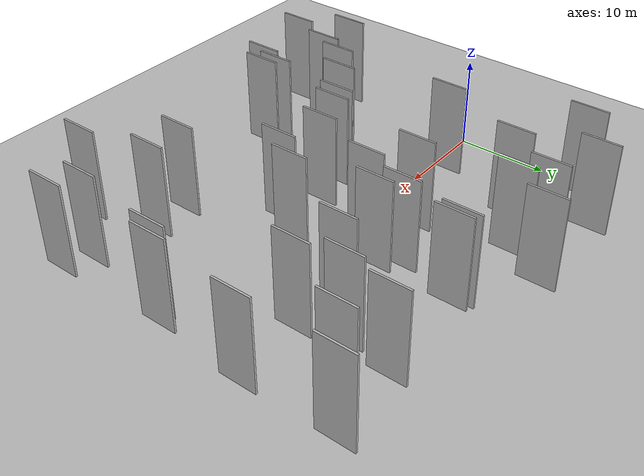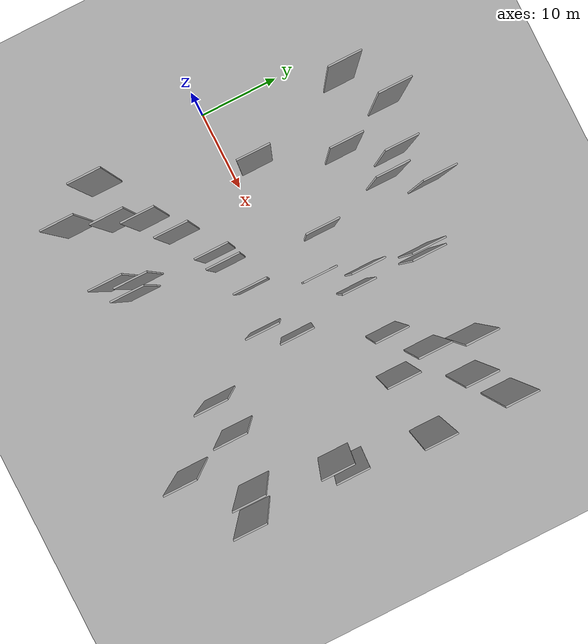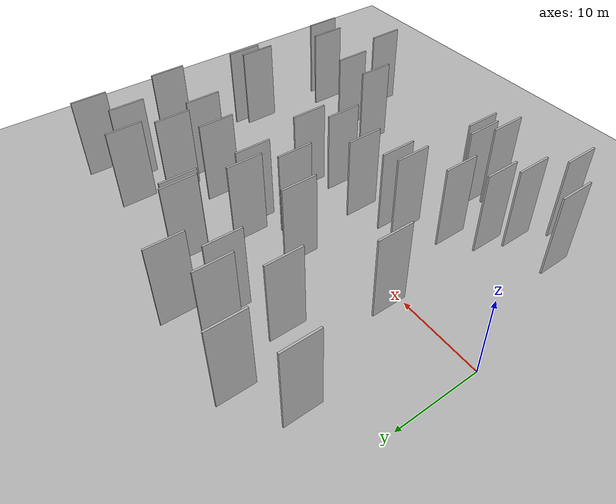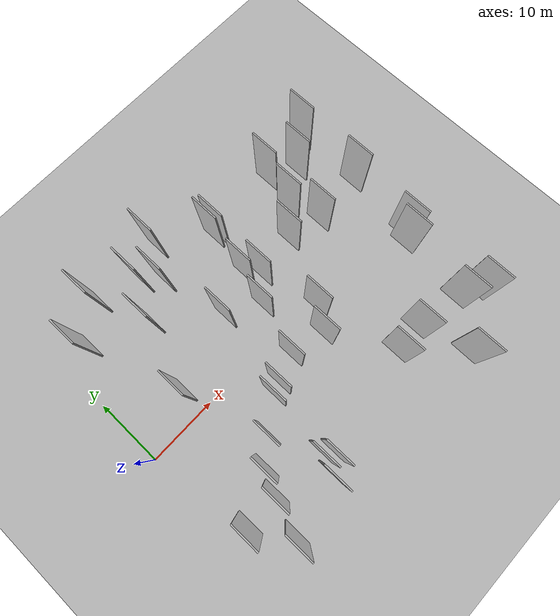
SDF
<?xml version="1.0" encoding="utf-8"?>

<sdf version="1.6">

   <world name="default">

      <gui fullscreen="0">

         <camera name="user_camera">

            <pose>-15 0 4.57585 0 0 0</pose>

            <view_controller>orbit</view_controller>

         </camera>

      </gui>

      <scene>

         <sky>

           <clouds>

             <speed>12</speed>

           </clouds>

         </sky>

         <ambient>0.4 0.4 0.4 1</ambient>

         <background>0.7 0.7 0.7 1</background>

         <shadows>1</shadows>

      </scene>

      <gravity>0 0 -9.8066</gravity>

      <magnetic_field>6e-06 2.3e-05 -4.2e-05</magnetic_field>

      <physics default="0" name="default_physics" type="ode">

         <ode>

            <solver>

               <type>quick</type>

               <iters>10</iters>

               <sor>1.0</sor>

               <use_dynamic_moi_rescaling>0</use_dynamic_moi_rescaling>

            </solver>

            <constraints>

               <cfm>0</cfm>

               <erp>0.2</erp>

               <contact_max_correcting_vel>100</contact_max_correcting_vel>

               <contact_surface_layer>0.001</contact_surface_layer>

            </constraints>

         </ode>

         <max_step_size>0.004</max_step_size>

         <real_time_factor>1</real_time_factor>

         <real_time_update_rate>250</real_time_update_rate>

      </physics>

      <light name="sun" type="directional">

         <cast_shadows>1</cast_shadows>

         <pose>0 0 10 0 0 0</pose>

         <diffuse>0.8 0.8 0.8 1</diffuse>

         <specular>0.2 0.2 0.2 1</specular>

         <attenuation>

            <range>1000</range>

            <constant>0.9</constant>

            <linear>0.01</linear>

            <quadratic>0.001</quadratic>

         </attenuation>

         <direction>-0.5 0.1 -0.9</direction>

      </light>

      <include>

         <name>ground_plane_1</name>

         <uri>model://HANNAS_ground_plane</uri>

         <pose>0 0 0  0 0 0</pose>

      </include>

      <include>

         <name>ground_plane_2</name>

         <uri>model://HANNAS_ground_plane</uri>

         <pose>100 0 0  0 0 0</pose>

      </include>

      <model name="HANNAS_wall_1">

         <static>1</static>

         <pose frame="">26.9041 6.5870 2.5 0.000000 0.000000 1.570796</pose>

         <link name="link">

            <pose frame="">0 0 5.00 0 0 0</pose>

            <collision name="collision">

               <geometry>

                  <box>

                     <size>4.00 0.2 10.00</size>

                  </box>

               </geometry>

               <max_contacts>10</max_contacts>

               <surface>

                  <contact>

                     <ode/>

                  </contact>

                  <bounce/>

                  <friction>

                     <torsional>

                        <ode/>

                     </torsional>

                     <ode/>

                  </friction>

               </surface>

            </collision>

            <visual name="visual">

               <cast_shadows>0</cast_shadows>

               <geometry>

                  <box>

                     <size>4.00 0.2 10.00</size>

                  </box>

               </geometry>

               <material>

                  <script>

                     <uri>model://HANNAS_wall/materials/scripts</uri>

                     <uri>model://HANNAS_wall/materials/textures</uri>

                     <name>vrc/HANNAS_wall</name>

                  </script>

               </material>

            </visual>

            <self_collide>0</self_collide>

            <enable_wind>0</enable_wind>

            <kinematic>0</kinematic>

         </link>

      </model>

      <model name="HANNAS_wall_2">

         <static>1</static>

         <pose frame="">26.3819 15.1215 2.5 0.000000 0.000000 1.570796</pose>

         <link name="link">

            <pose frame="">0 0 5.00 0 0 0</pose>

            <collision name="collision">

               <geometry>

                  <box>

                     <size>4.00 0.2 10.00</size>

                  </box>

               </geometry>

               <max_contacts>10</max_contacts>

               <surface>

                  <contact>

                     <ode/>

                  </contact>

                  <bounce/>

                  <friction>

                     <torsional>

                        <ode/>

                     </torsional>

                     <ode/>

                  </friction>

               </surface>

            </collision>

            <visual name="visual">

               <cast_shadows>0</cast_shadows>

               <geometry>

                  <box>

                     <size>4.00 0.2 10.00</size>

                  </box>

               </geometry>

               <material>

                  <script>

                     <uri>model://HANNAS_wall/materials/scripts</uri>

                     <uri>model://HANNAS_wall/materials/textures</uri>

                     <name>vrc/HANNAS_wall</name>

                  </script>

               </material>

            </visual>

            <self_collide>0</self_collide>

            <enable_wind>0</enable_wind>

            <kinematic>0</kinematic>

         </link>

      </model>

      <model name="HANNAS_wall_3">

         <static>1</static>

         <pose frame="">6.4852 -18.9125 2.5 0.000000 0.000000 1.570796</pose>

         <link name="link">

            <pose frame="">0 0 5.00 0 0 0</pose>

            <collision name="collision">

               <geometry>

                  <box>

                     <size>4.00 0.2 10.00</size>

                  </box>

               </geometry>

               <max_contacts>10</max_contacts>

               <surface>

                  <contact>

                     <ode/>

                  </contact>

                  <bounce/>

                  <friction>

                     <torsional>

                        <ode/>

                     </torsional>

                     <ode/>

                  </friction>

               </surface>

            </collision>

            <visual name="visual">

               <cast_shadows>0</cast_shadows>

               <geometry>

                  <box>

                     <size>4.00 0.2 10.00</size>

                  </box>

               </geometry>

               <material>

                  <script>

                     <uri>model://HANNAS_wall/materials/scripts</uri>

                     <uri>model://HANNAS_wall/materials/textures</uri>

                     <name>vrc/HANNAS_wall</name>

                  </script>

               </material>

            </visual>

            <self_collide>0</self_collide>

            <enable_wind>0</enable_wind>

            <kinematic>0</kinematic>

         </link>

      </model>

      <model name="HANNAS_wall_4">

         <static>1</static>

         <pose frame="">31.2590 -13.1753 2.5 0.000000 0.000000 1.570796</pose>

         <link name="link">

            <pose frame="">0 0 5.00 0 0 0</pose>

            <collision name="collision">

               <geometry>

                  <box>

                     <size>4.00 0.2 10.00</size>

                  </box>

               </geometry>

               <max_contacts>10</max_contacts>

               <surface>

                  <contact>

                     <ode/>

                  </contact>

                  <bounce/>

                  <friction>

                     <torsional>

                        <ode/>

                     </torsional>

                     <ode/>

                  </friction>

               </surface>

            </collision>

            <visual name="visual">

               <cast_shadows>0</cast_shadows>

               <geometry>

                  <box>

                     <size>4.00 0.2 10.00</size>

                  </box>

               </geometry>

               <material>

                  <script>

                     <uri>model://HANNAS_wall/materials/scripts</uri>

                     <uri>model://HANNAS_wall/materials/textures</uri>

                     <name>vrc/HANNAS_wall</name>

                  </script>

               </material>

            </visual>

            <self_collide>0</self_collide>

            <enable_wind>0</enable_wind>

            <kinematic>0</kinematic>

         </link>

      </model>

      <model name="HANNAS_wall_5">

         <static>1</static>

         <pose frame="">23.9160 3.4905 2.5 0.000000 0.000000 1.570796</pose>

         <link name="link">

            <pose frame="">0 0 5.00 0 0 0</pose>

            <collision name="collision">

               <geometry>

                  <box>

                     <size>4.00 0.2 10.00</size>

                  </box>

               </geometry>

               <max_contacts>10</max_contacts>

               <surface>

                  <contact>

                     <ode/>

                  </contact>

                  <bounce/>

                  <friction>

                     <torsional>

                        <ode/>

                     </torsional>

                     <ode/>

                  </friction>

               </surface>

            </collision>

            <visual name="visual">

               <cast_shadows>0</cast_shadows>

               <geometry>

                  <box>

                     <size>4.00 0.2 10.00</size>

                  </box>

               </geometry>

               <material>

                  <script>

                     <uri>model://HANNAS_wall/materials/scripts</uri>

                     <uri>model://HANNAS_wall/materials/textures</uri>

                     <name>vrc/HANNAS_wall</name>

                  </script>

               </material>

            </visual>

            <self_collide>0</self_collide>

            <enable_wind>0</enable_wind>

            <kinematic>0</kinematic>

         </link>

      </model>

      <model name="HANNAS_wall_6">

         <static>1</static>

         <pose frame="">16.5025 -5.6721 2.5 0.000000 0.000000 1.570796</pose>

         <link name="link">

            <pose frame="">0 0 5.00 0 0 0</pose>

            <collision name="collision">

               <geometry>

                  <box>

                     <size>4.00 0.2 10.00</size>

                  </box>

               </geometry>

               <max_contacts>10</max_contacts>

               <surface>

                  <contact>

                     <ode/>

                  </contact>

                  <bounce/>

                  <friction>

                     <torsional>

                        <ode/>

                     </torsional>

                     <ode/>

                  </friction>

               </surface>

            </collision>

            <visual name="visual">

               <cast_shadows>0</cast_shadows>

               <geometry>

                  <box>

                     <size>4.00 0.2 10.00</size>

                  </box>

               </geometry>

               <material>

                  <script>

                     <uri>model://HANNAS_wall/materials/scripts</uri>

                     <uri>model://HANNAS_wall/materials/textures</uri>

                     <name>vrc/HANNAS_wall</name>

                  </script>

               </material>

            </visual>

            <self_collide>0</self_collide>

            <enable_wind>0</enable_wind>

            <kinematic>0</kinematic>

         </link>

      </model>

      <model name="HANNAS_wall_7">

         <static>1</static>

         <pose frame="">44.8333 -15.3788 2.5 0.000000 0.000000 1.570796</pose>

         <link name="link">

            <pose frame="">0 0 5.00 0 0 0</pose>

            <collision name="collision">

               <geometry>

                  <box>

                     <size>4.00 0.2 10.00</size>

                  </box>

               </geometry>

               <max_contacts>10</max_contacts>

               <surface>

                  <contact>

                     <ode/>

                  </contact>

                  <bounce/>

                  <friction>

                     <torsional>

                        <ode/>

                     </torsional>

                     <ode/>

                  </friction>

               </surface>

            </collision>

            <visual name="visual">

               <cast_shadows>0</cast_shadows>

               <geometry>

                  <box>

                     <size>4.00 0.2 10.00</size>

                  </box>

               </geometry>

               <material>

                  <script>

                     <uri>model://HANNAS_wall/materials/scripts</uri>

                     <uri>model://HANNAS_wall/materials/textures</uri>

                     <name>vrc/HANNAS_wall</name>

                  </script>

               </material>

            </visual>

            <self_collide>0</self_collide>

            <enable_wind>0</enable_wind>

            <kinematic>0</kinematic>

         </link>

      </model>

      <model name="HANNAS_wall_8">

         <static>1</static>

         <pose frame="">41.5020 13.7802 2.5 0.000000 0.000000 1.570796</pose>

         <link name="link">

            <pose frame="">0 0 5.00 0 0 0</pose>

            <collision name="collision">

               <geometry>

                  <box>

                     <size>4.00 0.2 10.00</size>

                  </box>

               </geometry>

               <max_contacts>10</max_contacts>

               <surface>

                  <contact>

                     <ode/>

                  </contact>

                  <bounce/>

                  <friction>

                     <torsional>

                        <ode/>

                     </torsional>

                     <ode/>

                  </friction>

               </surface>

            </collision>

            <visual name="visual">

               <cast_shadows>0</cast_shadows>

               <geometry>

                  <box>

                     <size>4.00 0.2 10.00</size>

                  </box>

               </geometry>

               <material>

                  <script>

                     <uri>model://HANNAS_wall/materials/scripts</uri>

                     <uri>model://HANNAS_wall/materials/textures</uri>

                     <name>vrc/HANNAS_wall</name>

                  </script>

               </material>

            </visual>

            <self_collide>0</self_collide>

            <enable_wind>0</enable_wind>

            <kinematic>0</kinematic>

         </link>

      </model>

      <model name="HANNAS_wall_9">

         <static>1</static>

         <pose frame="">8.2278 -13.9145 2.5 0.000000 0.000000 1.570796</pose>

         <link name="link">

            <pose frame="">0 0 5.00 0 0 0</pose>

            <collision name="collision">

               <geometry>

                  <box>

                     <size>4.00 0.2 10.00</size>

                  </box>

               </geometry>

               <max_contacts>10</max_contacts>

               <surface>

                  <contact>

                     <ode/>

                  </contact>

                  <bounce/>

                  <friction>

                     <torsional>

                        <ode/>

                     </torsional>

                     <ode/>

                  </friction>

               </surface>

            </collision>

            <visual name="visual">

               <cast_shadows>0</cast_shadows>

               <geometry>

                  <box>

                     <size>4.00 0.2 10.00</size>

                  </box>

               </geometry>

               <material>

                  <script>

                     <uri>model://HANNAS_wall/materials/scripts</uri>

                     <uri>model://HANNAS_wall/materials/textures</uri>

                     <name>vrc/HANNAS_wall</name>

                  </script>

               </material>

            </visual>

            <self_collide>0</self_collide>

            <enable_wind>0</enable_wind>

            <kinematic>0</kinematic>

         </link>

      </model>

      <model name="HANNAS_wall_10">

         <static>1</static>

         <pose frame="">35.3496 -12.9307 2.5 0.000000 0.000000 1.570796</pose>

         <link name="link">

            <pose frame="">0 0 5.00 0 0 0</pose>

            <collision name="collision">

               <geometry>

                  <box>

                     <size>4.00 0.2 10.00</size>

                  </box>

               </geometry>

               <max_contacts>10</max_contacts>

               <surface>

                  <contact>

                     <ode/>

                  </contact>

                  <bounce/>

                  <friction>

                     <torsional>

                        <ode/>

                     </torsional>

                     <ode/>

                  </friction>

               </surface>

            </collision>

            <visual name="visual">

               <cast_shadows>0</cast_shadows>

               <geometry>

                  <box>

                     <size>4.00 0.2 10.00</size>

                  </box>

               </geometry>

               <material>

                  <script>

                     <uri>model://HANNAS_wall/materials/scripts</uri>

                     <uri>model://HANNAS_wall/materials/textures</uri>

                     <name>vrc/HANNAS_wall</name>

                  </script>

               </material>

            </visual>

            <self_collide>0</self_collide>

            <enable_wind>0</enable_wind>

            <kinematic>0</kinematic>

         </link>

      </model>

      <model name="HANNAS_wall_11">

         <static>1</static>

         <pose frame="">28.6428 -1.6257 2.5 0.000000 0.000000 1.570796</pose>

         <link name="link">

            <pose frame="">0 0 5.00 0 0 0</pose>

            <collision name="collision">

               <geometry>

                  <box>

                     <size>4.00 0.2 10.00</size>

                  </box>

               </geometry>

               <max_contacts>10</max_contacts>

               <surface>

                  <contact>

                     <ode/>

                  </contact>

                  <bounce/>

                  <friction>

                     <torsional>

                        <ode/>

                     </torsional>

                     <ode/>

                  </friction>

               </surface>

            </collision>

            <visual name="visual">

               <cast_shadows>0</cast_shadows>

               <geometry>

                  <box>

                     <size>4.00 0.2 10.00</size>

                  </box>

               </geometry>

               <material>

                  <script>

                     <uri>model://HANNAS_wall/materials/scripts</uri>

                     <uri>model://HANNAS_wall/materials/textures</uri>

                     <name>vrc/HANNAS_wall</name>

                  </script>

               </material>

            </visual>

            <self_collide>0</self_collide>

            <enable_wind>0</enable_wind>

            <kinematic>0</kinematic>

         </link>

      </model>

      <model name="HANNAS_wall_12">

         <static>1</static>

         <pose frame="">36.5569 10.7162 2.5 0.000000 0.000000 1.570796</pose>

         <link name="link">

            <pose frame="">0 0 5.00 0 0 0</pose>

            <collision name="collision">

               <geometry>

                  <box>

                     <size>4.00 0.2 10.00</size>

                  </box>

               </geometry>

               <max_contacts>10</max_contacts>

               <surface>

                  <contact>

                     <ode/>

                  </contact>

                  <bounce/>

                  <friction>

                     <torsional>

                        <ode/>

                     </torsional>

                     <ode/>

                  </friction>

               </surface>

            </collision>

            <visual name="visual">

               <cast_shadows>0</cast_shadows>

               <geometry>

                  <box>

                     <size>4.00 0.2 10.00</size>

                  </box>

               </geometry>

               <material>

                  <script>

                     <uri>model://HANNAS_wall/materials/scripts</uri>

                     <uri>model://HANNAS_wall/materials/textures</uri>

                     <name>vrc/HANNAS_wall</name>

                  </script>

               </material>

            </visual>

            <self_collide>0</self_collide>

            <enable_wind>0</enable_wind>

            <kinematic>0</kinematic>

         </link>

      </model>

      <model name="HANNAS_wall_13">

         <static>1</static>

         <pose frame="">27.0772 14.7902 2.5 0.000000 0.000000 1.570796</pose>

         <link name="link">

            <pose frame="">0 0 5.00 0 0 0</pose>

            <collision name="collision">

               <geometry>

                  <box>

                     <size>4.00 0.2 10.00</size>

                  </box>

               </geometry>

               <max_contacts>10</max_contacts>

               <surface>

                  <contact>

                     <ode/>

                  </contact>

                  <bounce/>

                  <friction>

                     <torsional>

                        <ode/>

                     </torsional>

                     <ode/>

                  </friction>

               </surface>

            </collision>

            <visual name="visual">

               <cast_shadows>0</cast_shadows>

               <geometry>

                  <box>

                     <size>4.00 0.2 10.00</size>

                  </box>

               </geometry>

               <material>

                  <script>

                     <uri>model://HANNAS_wall/materials/scripts</uri>

                     <uri>model://HANNAS_wall/materials/textures</uri>

                     <name>vrc/HANNAS_wall</name>

                  </script>

               </material>

            </visual>

            <self_collide>0</self_collide>

            <enable_wind>0</enable_wind>

            <kinematic>0</kinematic>

         </link>

      </model>

      <model name="HANNAS_wall_14">

         <static>1</static>

         <pose frame="">12.5107 12.3819 2.5 0.000000 0.000000 1.570796</pose>

         <link name="link">

            <pose frame="">0 0 5.00 0 0 0</pose>

            <collision name="collision">

               <geometry>

                  <box>

                     <size>4.00 0.2 10.00</size>

                  </box>

               </geometry>

               <max_contacts>10</max_contacts>

               <surface>

                  <contact>

                     <ode/>

                  </contact>

                  <bounce/>

                  <friction>

                     <torsional>

                        <ode/>

                     </torsional>

                     <ode/>

                  </friction>

               </surface>

            </collision>

            <visual name="visual">

               <cast_shadows>0</cast_shadows>

               <geometry>

                  <box>

                     <size>4.00 0.2 10.00</size>

                  </box>

               </geometry>

               <material>

                  <script>

                     <uri>model://HANNAS_wall/materials/scripts</uri>

                     <uri>model://HANNAS_wall/materials/textures</uri>

                     <name>vrc/HANNAS_wall</name>

                  </script>

               </material>

            </visual>

            <self_collide>0</self_collide>

            <enable_wind>0</enable_wind>

            <kinematic>0</kinematic>

         </link>

      </model>

      <model name="HANNAS_wall_15">

         <static>1</static>

         <pose frame="">9.2019 2.9906 2.5 0.000000 0.000000 1.570796</pose>

         <link name="link">

            <pose frame="">0 0 5.00 0 0 0</pose>

            <collision name="collision">

               <geometry>

                  <box>

                     <size>4.00 0.2 10.00</size>

                  </box>

               </geometry>

               <max_contacts>10</max_contacts>

               <surface>

                  <contact>

                     <ode/>

                  </contact>

                  <bounce/>

                  <friction>

                     <torsional>

                        <ode/>

                     </torsional>

                     <ode/>

                  </friction>

               </surface>

            </collision>

            <visual name="visual">

               <cast_shadows>0</cast_shadows>

               <geometry>

                  <box>

                     <size>4.00 0.2 10.00</size>

                  </box>

               </geometry>

               <material>

                  <script>

                     <uri>model://HANNAS_wall/materials/scripts</uri>

                     <uri>model://HANNAS_wall/materials/textures</uri>

                     <name>vrc/HANNAS_wall</name>

                  </script>

               </material>

            </visual>

            <self_collide>0</self_collide>

            <enable_wind>0</enable_wind>

            <kinematic>0</kinematic>

         </link>

      </model>

      <model name="HANNAS_wall_16">

         <static>1</static>

         <pose frame="">19.5017 6.0242 2.5 0.000000 0.000000 1.570796</pose>

         <link name="link">

            <pose frame="">0 0 5.00 0 0 0</pose>

            <collision name="collision">

               <geometry>

                  <box>

                     <size>4.00 0.2 10.00</size>

                  </box>

               </geometry>

               <max_contacts>10</max_contacts>

               <surface>

                  <contact>

                     <ode/>

                  </contact>

                  <bounce/>

                  <friction>

                     <torsional>

                        <ode/>

                     </torsional>

                     <ode/>

                  </friction>

               </surface>

            </collision>

            <visual name="visual">

               <cast_shadows>0</cast_shadows>

               <geometry>

                  <box>

                     <size>4.00 0.2 10.00</size>

                  </box>

               </geometry>

               <material>

                  <script>

                     <uri>model://HANNAS_wall/materials/scripts</uri>

                     <uri>model://HANNAS_wall/materials/textures</uri>

                     <name>vrc/HANNAS_wall</name>

                  </script>

               </material>

            </visual>

            <self_collide>0</self_collide>

            <enable_wind>0</enable_wind>

            <kinematic>0</kinematic>

         </link>

      </model>

      <model name="HANNAS_wall_17">

         <static>1</static>

         <pose frame="">26.5281 -4.6835 2.5 0.000000 0.000000 1.570796</pose>

         <link name="link">

            <pose frame="">0 0 5.00 0 0 0</pose>

            <collision name="collision">

               <geometry>

                  <box>

                     <size>4.00 0.2 10.00</size>

                  </box>

               </geometry>

               <max_contacts>10</max_contacts>

               <surface>

                  <contact>

                     <ode/>

                  </contact>

                  <bounce/>

                  <friction>

                     <torsional>

                        <ode/>

                     </torsional>

                     <ode/>

                  </friction>

               </surface>

            </collision>

            <visual name="visual">

               <cast_shadows>0</cast_shadows>

               <geometry>

                  <box>

                     <size>4.00 0.2 10.00</size>

                  </box>

               </geometry>

               <material>

                  <script>

                     <uri>model://HANNAS_wall/materials/scripts</uri>

                     <uri>model://HANNAS_wall/materials/textures</uri>

                     <name>vrc/HANNAS_wall</name>

                  </script>

               </material>

            </visual>

            <self_collide>0</self_collide>

            <enable_wind>0</enable_wind>

            <kinematic>0</kinematic>

         </link>

      </model>

      <model name="HANNAS_wall_18">

         <static>1</static>

         <pose frame="">9.5683 -10.9269 2.5 0.000000 0.000000 1.570796</pose>

         <link name="link">

            <pose frame="">0 0 5.00 0 0 0</pose>

            <collision name="collision">

               <geometry>

                  <box>

                     <size>4.00 0.2 10.00</size>

                  </box>

               </geometry>

               <max_contacts>10</max_contacts>

               <surface>

                  <contact>

                     <ode/>

                  </contact>

                  <bounce/>

                  <friction>

                     <torsional>

                        <ode/>

                     </torsional>

                     <ode/>

                  </friction>

               </surface>

            </collision>

            <visual name="visual">

               <cast_shadows>0</cast_shadows>

               <geometry>

                  <box>

                     <size>4.00 0.2 10.00</size>

                  </box>

               </geometry>

               <material>

                  <script>

                     <uri>model://HANNAS_wall/materials/scripts</uri>

                     <uri>model://HANNAS_wall/materials/textures</uri>

                     <name>vrc/HANNAS_wall</name>

                  </script>

               </material>

            </visual>

            <self_collide>0</self_collide>

            <enable_wind>0</enable_wind>

            <kinematic>0</kinematic>

         </link>

      </model>

      <model name="HANNAS_wall_19">

         <static>1</static>

         <pose frame="">16.5350 -15.6450 2.5 0.000000 0.000000 1.570796</pose>

         <link name="link">

            <pose frame="">0 0 5.00 0 0 0</pose>

            <collision name="collision">

               <geometry>

                  <box>

                     <size>4.00 0.2 10.00</size>

                  </box>

               </geometry>

               <max_contacts>10</max_contacts>

               <surface>

                  <contact>

                     <ode/>

                  </contact>

                  <bounce/>

                  <friction>

                     <torsional>

                        <ode/>

                     </torsional>

                     <ode/>

                  </friction>

               </surface>

            </collision>

            <visual name="visual">

               <cast_shadows>0</cast_shadows>

               <geometry>

                  <box>

                     <size>4.00 0.2 10.00</size>

                  </box>

               </geometry>

               <material>

                  <script>

                     <uri>model://HANNAS_wall/materials/scripts</uri>

                     <uri>model://HANNAS_wall/materials/textures</uri>

                     <name>vrc/HANNAS_wall</name>

                  </script>

               </material>

            </visual>

            <self_collide>0</self_collide>

            <enable_wind>0</enable_wind>

            <kinematic>0</kinematic>

         </link>

      </model>

      <model name="HANNAS_wall_20">

         <static>1</static>

         <pose frame="">18.0284 -5.0637 2.5 0.000000 0.000000 1.570796</pose>

         <link name="link">

            <pose frame="">0 0 5.00 0 0 0</pose>

            <collision name="collision">

               <geometry>

                  <box>

                     <size>4.00 0.2 10.00</size>

                  </box>

               </geometry>

               <max_contacts>10</max_contacts>

               <surface>

                  <contact>

                     <ode/>

                  </contact>

                  <bounce/>

                  <friction>

                     <torsional>

                        <ode/>

                     </torsional>

                     <ode/>

                  </friction>

               </surface>

            </collision>

            <visual name="visual">

               <cast_shadows>0</cast_shadows>

               <geometry>

                  <box>

                     <size>4.00 0.2 10.00</size>

                  </box>

               </geometry>

               <material>

                  <script>

                     <uri>model://HANNAS_wall/materials/scripts</uri>

                     <uri>model://HANNAS_wall/materials/textures</uri>

                     <name>vrc/HANNAS_wall</name>

                  </script>

               </material>

            </visual>

            <self_collide>0</self_collide>

            <enable_wind>0</enable_wind>

            <kinematic>0</kinematic>

         </link>

      </model>

      <model name="HANNAS_wall_21">

         <static>1</static>

         <pose frame="">15.3805 17.4864 2.5 0.000000 0.000000 1.570796</pose>

         <link name="link">

            <pose frame="">0 0 5.00 0 0 0</pose>

            <collision name="collision">

               <geometry>

                  <box>

                     <size>4.00 0.2 10.00</size>

                  </box>

               </geometry>

               <max_contacts>10</max_contacts>

               <surface>

                  <contact>

                     <ode/>

                  </contact>

                  <bounce/>

                  <friction>

                     <torsional>

                        <ode/>

                     </torsional>

                     <ode/>

                  </friction>

               </surface>

            </collision>

            <visual name="visual">

               <cast_shadows>0</cast_shadows>

               <geometry>

                  <box>

                     <size>4.00 0.2 10.00</size>

                  </box>

               </geometry>

               <material>

                  <script>

                     <uri>model://HANNAS_wall/materials/scripts</uri>

                     <uri>model://HANNAS_wall/materials/textures</uri>

                     <name>vrc/HANNAS_wall</name>

                  </script>

               </material>

            </visual>

            <self_collide>0</self_collide>

            <enable_wind>0</enable_wind>

            <kinematic>0</kinematic>

         </link>

      </model>

      <model name="HANNAS_wall_22">

         <static>1</static>

         <pose frame="">45.2720 16.5932 2.5 0.000000 0.000000 1.570796</pose>

         <link name="link">

            <pose frame="">0 0 5.00 0 0 0</pose>

            <collision name="collision">

               <geometry>

                  <box>

                     <size>4.00 0.2 10.00</size>

                  </box>

               </geometry>

               <max_contacts>10</max_contacts>

               <surface>

                  <contact>

                     <ode/>

                  </contact>

                  <bounce/>

                  <friction>

                     <torsional>

                        <ode/>

                     </torsional>

                     <ode/>

                  </friction>

               </surface>

            </collision>

            <visual name="visual">

               <cast_shadows>0</cast_shadows>

               <geometry>

                  <box>

                     <size>4.00 0.2 10.00</size>

                  </box>

               </geometry>

               <material>

                  <script>

                     <uri>model://HANNAS_wall/materials/scripts</uri>

                     <uri>model://HANNAS_wall/materials/textures</uri>

                     <name>vrc/HANNAS_wall</name>

                  </script>

               </material>

            </visual>

            <self_collide>0</self_collide>

            <enable_wind>0</enable_wind>

            <kinematic>0</kinematic>

         </link>

      </model>

      <model name="HANNAS_wall_23">

         <static>1</static>

         <pose frame="">14.4323 -17.2054 2.5 0.000000 0.000000 1.570796</pose>

         <link name="link">

            <pose frame="">0 0 5.00 0 0 0</pose>

            <collision name="collision">

               <geometry>

                  <box>

                     <size>4.00 0.2 10.00</size>

                  </box>

               </geometry>

               <max_contacts>10</max_contacts>

               <surface>

                  <contact>

                     <ode/>

                  </contact>

                  <bounce/>

                  <friction>

                     <torsional>

                        <ode/>

                     </torsional>

                     <ode/>

                  </friction>

               </surface>

            </collision>

            <visual name="visual">

               <cast_shadows>0</cast_shadows>

               <geometry>

                  <box>

                     <size>4.00 0.2 10.00</size>

                  </box>

               </geometry>

               <material>

                  <script>

                     <uri>model://HANNAS_wall/materials/scripts</uri>

                     <uri>model://HANNAS_wall/materials/textures</uri>

                     <name>vrc/HANNAS_wall</name>

                  </script>

               </material>

            </visual>

            <self_collide>0</self_collide>

            <enable_wind>0</enable_wind>

            <kinematic>0</kinematic>

         </link>

      </model>

      <model name="HANNAS_wall_24">

         <static>1</static>

         <pose frame="">17.4647 15.3753 2.5 0.000000 0.000000 1.570796</pose>

         <link name="link">

            <pose frame="">0 0 5.00 0 0 0</pose>

            <collision name="collision">

               <geometry>

                  <box>

                     <size>4.00 0.2 10.00</size>

                  </box>

               </geometry>

               <max_contacts>10</max_contacts>

               <surface>

                  <contact>

                     <ode/>

                  </contact>

                  <bounce/>

                  <friction>

                     <torsional>

                        <ode/>

                     </torsional>

                     <ode/>

                  </friction>

               </surface>

            </collision>

            <visual name="visual">

               <cast_shadows>0</cast_shadows>

               <geometry>

                  <box>

                     <size>4.00 0.2 10.00</size>

                  </box>

               </geometry>

               <material>

                  <script>

                     <uri>model://HANNAS_wall/materials/scripts</uri>

                     <uri>model://HANNAS_wall/materials/textures</uri>

                     <name>vrc/HANNAS_wall</name>

                  </script>

               </material>

            </visual>

            <self_collide>0</self_collide>

            <enable_wind>0</enable_wind>

            <kinematic>0</kinematic>

         </link>

      </model>

      <model name="HANNAS_wall_25">

         <static>1</static>

         <pose frame="">3.3491 -14.1056 2.5 0.000000 0.000000 1.570796</pose>

         <link name="link">

            <pose frame="">0 0 5.00 0 0 0</pose>

            <collision name="collision">

               <geometry>

                  <box>

                     <size>4.00 0.2 10.00</size>

                  </box>

               </geometry>

               <max_contacts>10</max_contacts>

               <surface>

                  <contact>

                     <ode/>

                  </contact>

                  <bounce/>

                  <friction>

                     <torsional>

                        <ode/>

                     </torsional>

                     <ode/>

                  </friction>

               </surface>

            </collision>

            <visual name="visual">

               <cast_shadows>0</cast_shadows>

               <geometry>

                  <box>

                     <size>4.00 0.2 10.00</size>

                  </box>

               </geometry>

               <material>

                  <script>

                     <uri>model://HANNAS_wall/materials/scripts</uri>

                     <uri>model://HANNAS_wall/materials/textures</uri>

                     <name>vrc/HANNAS_wall</name>

                  </script>

               </material>

            </visual>

            <self_collide>0</self_collide>

            <enable_wind>0</enable_wind>

            <kinematic>0</kinematic>

         </link>

      </model>

      <model name="HANNAS_wall_26">

         <static>1</static>

         <pose frame="">15.4044 -14.6939 2.5 0.000000 0.000000 1.570796</pose>

         <link name="link">

            <pose frame="">0 0 5.00 0 0 0</pose>

            <collision name="collision">

               <geometry>

                  <box>

                     <size>4.00 0.2 10.00</size>

                  </box>

               </geometry>

               <max_contacts>10</max_contacts>

               <surface>

                  <contact>

                     <ode/>

                  </contact>

                  <bounce/>

                  <friction>

                     <torsional>

                        <ode/>

                     </torsional>

                     <ode/>

                  </friction>

               </surface>

            </collision>

            <visual name="visual">

               <cast_shadows>0</cast_shadows>

               <geometry>

                  <box>

                     <size>4.00 0.2 10.00</size>

                  </box>

               </geometry>

               <material>

                  <script>

                     <uri>model://HANNAS_wall/materials/scripts</uri>

                     <uri>model://HANNAS_wall/materials/textures</uri>

                     <name>vrc/HANNAS_wall</name>

                  </script>

               </material>

            </visual>

            <self_collide>0</self_collide>

            <enable_wind>0</enable_wind>

            <kinematic>0</kinematic>

         </link>

      </model>

      <model name="HANNAS_wall_27">

         <static>1</static>

         <pose frame="">4.7635 16.0858 2.5 0.000000 0.000000 1.570796</pose>

         <link name="link">

            <pose frame="">0 0 5.00 0 0 0</pose>

            <collision name="collision">

               <geometry>

                  <box>

                     <size>4.00 0.2 10.00</size>

                  </box>

               </geometry>

               <max_contacts>10</max_contacts>

               <surface>

                  <contact>

                     <ode/>

                  </contact>

                  <bounce/>

                  <friction>

                     <torsional>

                        <ode/>

                     </torsional>

                     <ode/>

                  </friction>

               </surface>

            </collision>

            <visual name="visual">

               <cast_shadows>0</cast_shadows>

               <geometry>

                  <box>

                     <size>4.00 0.2 10.00</size>

                  </box>

               </geometry>

               <material>

                  <script>

                     <uri>model://HANNAS_wall/materials/scripts</uri>

                     <uri>model://HANNAS_wall/materials/textures</uri>

                     <name>vrc/HANNAS_wall</name>

                  </script>

               </material>

            </visual>

            <self_collide>0</self_collide>

            <enable_wind>0</enable_wind>

            <kinematic>0</kinematic>

         </link>

      </model>

      <model name="HANNAS_wall_28">

         <static>1</static>

         <pose frame="">44.4945 -3.0282 2.5 0.000000 0.000000 1.570796</pose>

         <link name="link">

            <pose frame="">0 0 5.00 0 0 0</pose>

            <collision name="collision">

               <geometry>

                  <box>

                     <size>4.00 0.2 10.00</size>

                  </box>

               </geometry>

               <max_contacts>10</max_contacts>

               <surface>

                  <contact>

                     <ode/>

                  </contact>

                  <bounce/>

                  <friction>

                     <torsional>

                        <ode/>

                     </torsional>

                     <ode/>

                  </friction>

               </surface>

            </collision>

            <visual name="visual">

               <cast_shadows>0</cast_shadows>

               <geometry>

                  <box>

                     <size>4.00 0.2 10.00</size>

                  </box>

               </geometry>

               <material>

                  <script>

                     <uri>model://HANNAS_wall/materials/scripts</uri>

                     <uri>model://HANNAS_wall/materials/textures</uri>

                     <name>vrc/HANNAS_wall</name>

                  </script>

               </material>

            </visual>

            <self_collide>0</self_collide>

            <enable_wind>0</enable_wind>

            <kinematic>0</kinematic>

         </link>

      </model>

      <model name="HANNAS_wall_29">

         <static>1</static>

         <pose frame="">9.6377 19.5769 2.5 0.000000 0.000000 1.570796</pose>

         <link name="link">

            <pose frame="">0 0 5.00 0 0 0</pose>

            <collision name="collision">

               <geometry>

                  <box>

                     <size>4.00 0.2 10.00</size>

                  </box>

               </geometry>

               <max_contacts>10</max_contacts>

               <surface>

                  <contact>

                     <ode/>

                  </contact>

                  <bounce/>

                  <friction>

                     <torsional>

                        <ode/>

                     </torsional>

                     <ode/>

                  </friction>

               </surface>

            </collision>

            <visual name="visual">

               <cast_shadows>0</cast_shadows>

               <geometry>

                  <box>

                     <size>4.00 0.2 10.00</size>

                  </box>

               </geometry>

               <material>

                  <script>

                     <uri>model://HANNAS_wall/materials/scripts</uri>

                     <uri>model://HANNAS_wall/materials/textures</uri>

                     <name>vrc/HANNAS_wall</name>

                  </script>

               </material>

            </visual>

            <self_collide>0</self_collide>

            <enable_wind>0</enable_wind>

            <kinematic>0</kinematic>

         </link>

      </model>

      <model name="HANNAS_wall_30">

         <static>1</static>

         <pose frame="">33.0393 7.3694 2.5 0.000000 0.000000 1.570796</pose>

         <link name="link">

            <pose frame="">0 0 5.00 0 0 0</pose>

            <collision name="collision">

               <geometry>

                  <box>

                     <size>4.00 0.2 10.00</size>

                  </box>

               </geometry>

               <max_contacts>10</max_contacts>

               <surface>

                  <contact>

                     <ode/>

                  </contact>

                  <bounce/>

                  <friction>

                     <torsional>

                        <ode/>

                     </torsional>

                     <ode/>

                  </friction>

               </surface>

            </collision>

            <visual name="visual">

               <cast_shadows>0</cast_shadows>

               <geometry>

                  <box>

                     <size>4.00 0.2 10.00</size>

                  </box>

               </geometry>

               <material>

                  <script>

                     <uri>model://HANNAS_wall/materials/scripts</uri>

                     <uri>model://HANNAS_wall/materials/textures</uri>

                     <name>vrc/HANNAS_wall</name>

                  </script>

               </material>

            </visual>

            <self_collide>0</self_collide>

            <enable_wind>0</enable_wind>

            <kinematic>0</kinematic>

         </link>

      </model>

      <model name="HANNAS_wall_31">

         <static>1</static>

         <pose frame="">20.0452 19.6354 2.5 0.000000 0.000000 1.570796</pose>

         <link name="link">

            <pose frame="">0 0 5.00 0 0 0</pose>

            <collision name="collision">

               <geometry>

                  <box>

                     <size>4.00 0.2 10.00</size>

                  </box>

               </geometry>

               <max_contacts>10</max_contacts>

               <surface>

                  <contact>

                     <ode/>

                  </contact>

                  <bounce/>

                  <friction>

                     <torsional>

                        <ode/>

                     </torsional>

                     <ode/>

                  </friction>

               </surface>

            </collision>

            <visual name="visual">

               <cast_shadows>0</cast_shadows>

               <geometry>

                  <box>

                     <size>4.00 0.2 10.00</size>

                  </box>

               </geometry>

               <material>

                  <script>

                     <uri>model://HANNAS_wall/materials/scripts</uri>

                     <uri>model://HANNAS_wall/materials/textures</uri>

                     <name>vrc/HANNAS_wall</name>

                  </script>

               </material>

            </visual>

            <self_collide>0</self_collide>

            <enable_wind>0</enable_wind>

            <kinematic>0</kinematic>

         </link>

      </model>

      <model name="HANNAS_wall_32">

         <static>1</static>

         <pose frame="">42.1272 -14.1550 2.5 0.000000 0.000000 1.570796</pose>

         <link name="link">

            <pose frame="">0 0 5.00 0 0 0</pose>

            <collision name="collision">

               <geometry>

                  <box>

                     <size>4.00 0.2 10.00</size>

                  </box>

               </geometry>

               <max_contacts>10</max_contacts>

               <surface>

                  <contact>

                     <ode/>

                  </contact>

                  <bounce/>

                  <friction>

                     <torsional>

                        <ode/>

                     </torsional>

                     <ode/>

                  </friction>

               </surface>

            </collision>

            <visual name="visual">

               <cast_shadows>0</cast_shadows>

               <geometry>

                  <box>

                     <size>4.00 0.2 10.00</size>

                  </box>

               </geometry>

               <material>

                  <script>

                     <uri>model://HANNAS_wall/materials/scripts</uri>

                     <uri>model://HANNAS_wall/materials/textures</uri>

                     <name>vrc/HANNAS_wall</name>

                  </script>

               </material>

            </visual>

            <self_collide>0</self_collide>

            <enable_wind>0</enable_wind>

            <kinematic>0</kinematic>

         </link>

      </model>

      <model name="HANNAS_wall_33">

         <static>1</static>

         <pose frame="">21.6703 -3.6999 2.5 0.000000 0.000000 1.570796</pose>

         <link name="link">

            <pose frame="">0 0 5.00 0 0 0</pose>

            <collision name="collision">

               <geometry>

                  <box>

                     <size>4.00 0.2 10.00</size>

                  </box>

               </geometry>

               <max_contacts>10</max_contacts>

               <surface>

                  <contact>

                     <ode/>

                  </contact>

                  <bounce/>

                  <friction>

                     <torsional>

                        <ode/>

                     </torsional>

                     <ode/>

                  </friction>

               </surface>

            </collision>

            <visual name="visual">

               <cast_shadows>0</cast_shadows>

               <geometry>

                  <box>

                     <size>4.00 0.2 10.00</size>

                  </box>

               </geometry>

               <material>

                  <script>

                     <uri>model://HANNAS_wall/materials/scripts</uri>

                     <uri>model://HANNAS_wall/materials/textures</uri>

                     <name>vrc/HANNAS_wall</name>

                  </script>

               </material>

            </visual>

            <self_collide>0</self_collide>

            <enable_wind>0</enable_wind>

            <kinematic>0</kinematic>

         </link>

      </model>

      <model name="HANNAS_wall_34">

         <static>1</static>

         <pose frame="">43.4035 -4.2499 2.5 0.000000 0.000000 1.570796</pose>

         <link name="link">

            <pose frame="">0 0 5.00 0 0 0</pose>

            <collision name="collision">

               <geometry>

                  <box>

                     <size>4.00 0.2 10.00</size>

                  </box>

               </geometry>

               <max_contacts>10</max_contacts>

               <surface>

                  <contact>

                     <ode/>

                  </contact>

                  <bounce/>

                  <friction>

                     <torsional>

                        <ode/>

                     </torsional>

                     <ode/>

                  </friction>

               </surface>

            </collision>

            <visual name="visual">

               <cast_shadows>0</cast_shadows>

               <geometry>

                  <box>

                     <size>4.00 0.2 10.00</size>

                  </box>

               </geometry>

               <material>

                  <script>

                     <uri>model://HANNAS_wall/materials/scripts</uri>

                     <uri>model://HANNAS_wall/materials/textures</uri>

                     <name>vrc/HANNAS_wall</name>

                  </script>

               </material>

            </visual>

            <self_collide>0</self_collide>

            <enable_wind>0</enable_wind>

            <kinematic>0</kinematic>

         </link>

      </model>

      <model name="HANNAS_wall_35">

         <static>1</static>

         <pose frame="">37.3505 -19.8924 2.5 0.000000 0.000000 1.570796</pose>

         <link name="link">

            <pose frame="">0 0 5.00 0 0 0</pose>

            <collision name="collision">

               <geometry>

                  <box>

                     <size>4.00 0.2 10.00</size>

                  </box>

               </geometry>

               <max_contacts>10</max_contacts>

               <surface>

                  <contact>

                     <ode/>

                  </contact>

                  <bounce/>

                  <friction>

                     <torsional>

                        <ode/>

                     </torsional>

                     <ode/>

                  </friction>

               </surface>

            </collision>

            <visual name="visual">

               <cast_shadows>0</cast_shadows>

               <geometry>

                  <box>

                     <size>4.00 0.2 10.00</size>

                  </box>

               </geometry>

               <material>

                  <script>

                     <uri>model://HANNAS_wall/materials/scripts</uri>

                     <uri>model://HANNAS_wall/materials/textures</uri>

                     <name>vrc/HANNAS_wall</name>

                  </script>

               </material>

            </visual>

            <self_collide>0</self_collide>

            <enable_wind>0</enable_wind>

            <kinematic>0</kinematic>

         </link>

      </model>

      <model name="HANNAS_wall_36">

         <static>1</static>

         <pose frame="">25.4108 8.4555 2.5 0.000000 0.000000 1.570796</pose>

         <link name="link">

            <pose frame="">0 0 5.00 0 0 0</pose>

            <collision name="collision">

               <geometry>

                  <box>

                     <size>4.00 0.2 10.00</size>

                  </box>

               </geometry>

               <max_contacts>10</max_contacts>

               <surface>

                  <contact>

                     <ode/>

                  </contact>

                  <bounce/>

                  <friction>

                     <torsional>

                        <ode/>

                     </torsional>

                     <ode/>

                  </friction>

               </surface>

            </collision>

            <visual name="visual">

               <cast_shadows>0</cast_shadows>

               <geometry>

                  <box>

                     <size>4.00 0.2 10.00</size>

                  </box>

               </geometry>

               <material>

                  <script>

                     <uri>model://HANNAS_wall/materials/scripts</uri>

                     <uri>model://HANNAS_wall/materials/textures</uri>

                     <name>vrc/HANNAS_wall</name>

                  </script>

               </material>

            </visual>

            <self_collide>0</self_collide>

            <enable_wind>0</enable_wind>

            <kinematic>0</kinematic>

         </link>

      </model>

      <model name="HANNAS_wall_37">

         <static>1</static>

         <pose frame="">12.5548 -8.4505 2.5 0.000000 0.000000 1.570796</pose>

         <link name="link">

            <pose frame="">0 0 5.00 0 0 0</pose>

            <collision name="collision">

               <geometry>

                  <box>

                     <size>4.00 0.2 10.00</size>

                  </box>

               </geometry>

               <max_contacts>10</max_contacts>

               <surface>

                  <contact>

                     <ode/>

                  </contact>

                  <bounce/>

                  <friction>

                     <torsional>

                        <ode/>

                     </torsional>

                     <ode/>

                  </friction>

               </surface>

            </collision>

            <visual name="visual">

               <cast_shadows>0</cast_shadows>

               <geometry>

                  <box>

                     <size>4.00 0.2 10.00</size>

                  </box>

               </geometry>

               <material>

                  <script>

                     <uri>model://HANNAS_wall/materials/scripts</uri>

                     <uri>model://HANNAS_wall/materials/textures</uri>

                     <name>vrc/HANNAS_wall</name>

                  </script>

               </material>

            </visual>

            <self_collide>0</self_collide>

            <enable_wind>0</enable_wind>

            <kinematic>0</kinematic>

         </link>

      </model>

      <model name="HANNAS_wall_38">

         <static>1</static>

         <pose frame="">37.5532 15.7757 2.5 0.000000 0.000000 1.570796</pose>

         <link name="link">

            <pose frame="">0 0 5.00 0 0 0</pose>

            <collision name="collision">

               <geometry>

                  <box>

                     <size>4.00 0.2 10.00</size>

                  </box>

               </geometry>

               <max_contacts>10</max_contacts>

               <surface>

                  <contact>

                     <ode/>

                  </contact>

                  <bounce/>

                  <friction>

                     <torsional>

                        <ode/>

                     </torsional>

                     <ode/>

                  </friction>

               </surface>

            </collision>

            <visual name="visual">

               <cast_shadows>0</cast_shadows>

               <geometry>

                  <box>

                     <size>4.00 0.2 10.00</size>

                  </box>

               </geometry>

               <material>

                  <script>

                     <uri>model://HANNAS_wall/materials/scripts</uri>

                     <uri>model://HANNAS_wall/materials/textures</uri>

                     <name>vrc/HANNAS_wall</name>

                  </script>

               </material>

            </visual>

            <self_collide>0</self_collide>

            <enable_wind>0</enable_wind>

            <kinematic>0</kinematic>

         </link>

      </model>

      <model name="HANNAS_wall_39">

         <static>1</static>

         <pose frame="">37.8994 6.3430 2.5 0.000000 0.000000 1.570796</pose>

         <link name="link">

            <pose frame="">0 0 5.00 0 0 0</pose>

            <collision name="collision">

               <geometry>

                  <box>

                     <size>4.00 0.2 10.00</size>

                  </box>

               </geometry>

               <max_contacts>10</max_contacts>

               <surface>

                  <contact>

                     <ode/>

                  </contact>

                  <bounce/>

                  <friction>

                     <torsional>

                        <ode/>

                     </torsional>

                     <ode/>

                  </friction>

               </surface>

            </collision>

            <visual name="visual">

               <cast_shadows>0</cast_shadows>

               <geometry>

                  <box>

                     <size>4.00 0.2 10.00</size>

                  </box>

               </geometry>

               <material>

                  <script>

                     <uri>model://HANNAS_wall/materials/scripts</uri>

                     <uri>model://HANNAS_wall/materials/textures</uri>

                     <name>vrc/HANNAS_wall</name>

                  </script>

               </material>

            </visual>

            <self_collide>0</self_collide>

            <enable_wind>0</enable_wind>

            <kinematic>0</kinematic>

         </link>

      </model>

      <model name="HANNAS_wall_40">

         <static>1</static>

         <pose frame="">45.4515 6.9298 2.5 0.000000 0.000000 1.570796</pose>

         <link name="link">

            <pose frame="">0 0 5.00 0 0 0</pose>

            <collision name="collision">

               <geometry>

                  <box>

                     <size>4.00 0.2 10.00</size>

                  </box>

               </geometry>

               <max_contacts>10</max_contacts>

               <surface>

                  <contact>

                     <ode/>

                  </contact>

                  <bounce/>

                  <friction>

                     <torsional>

                        <ode/>

                     </torsional>

                     <ode/>

                  </friction>

               </surface>

            </collision>

            <visual name="visual">

               <cast_shadows>0</cast_shadows>

               <geometry>

                  <box>

                     <size>4.00 0.2 10.00</size>

                  </box>

               </geometry>

               <material>

                  <script>

                     <uri>model://HANNAS_wall/materials/scripts</uri>

                     <uri>model://HANNAS_wall/materials/textures</uri>

                     <name>vrc/HANNAS_wall</name>

                  </script>

               </material>

            </visual>

            <self_collide>0</self_collide>

            <enable_wind>0</enable_wind>

            <kinematic>0</kinematic>

         </link>

      </model>

   </world>

</sdf>
